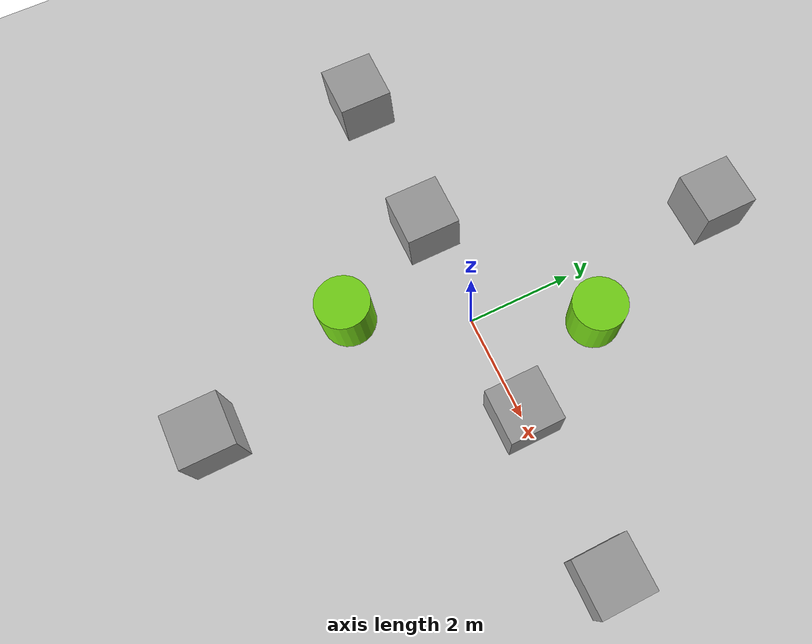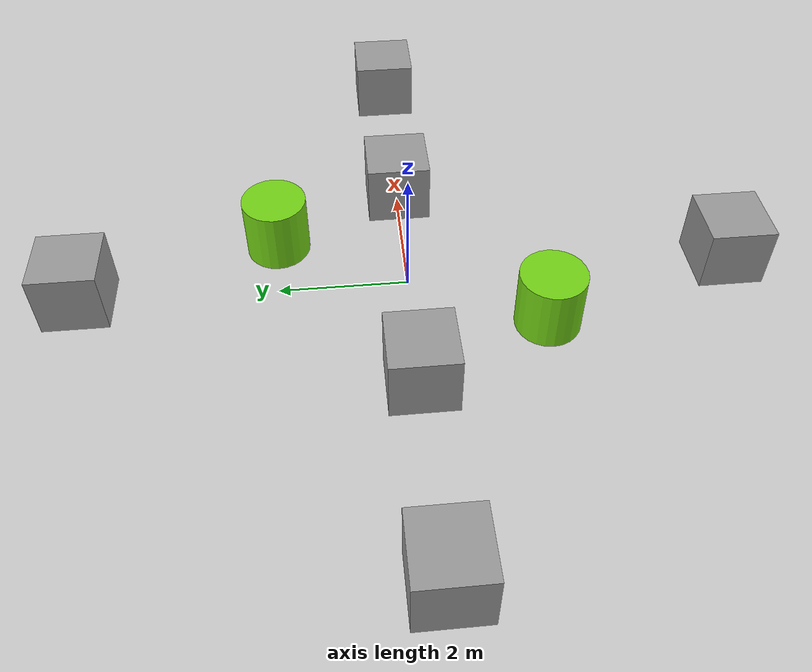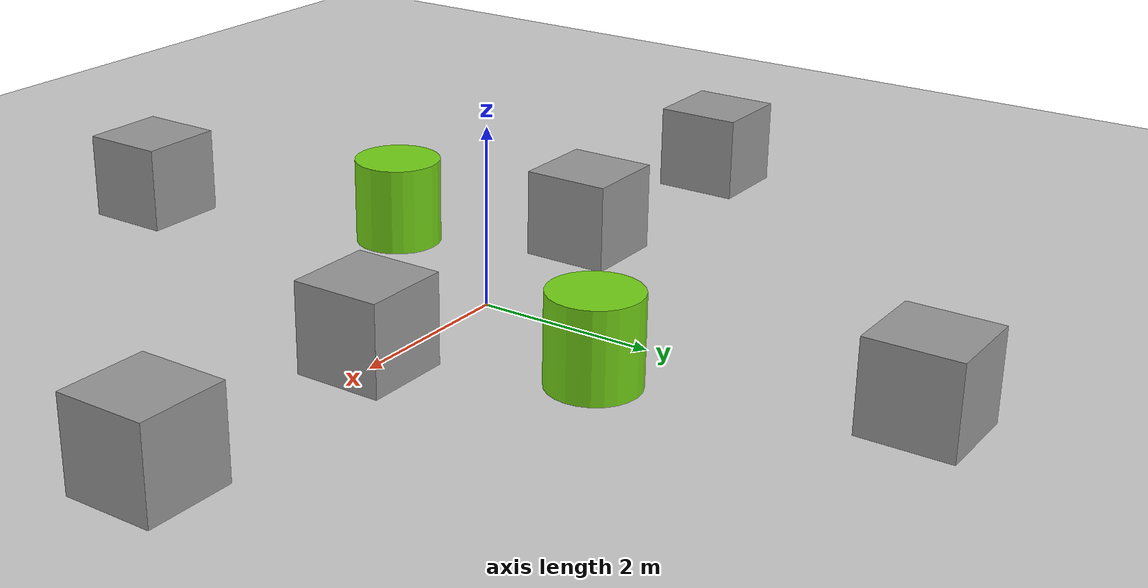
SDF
<?xml version="1.0" ?>
<sdf version="1.6">
  <world name="maze_world">

    <!-- Lighting -->
    <include>
      <uri>model://sun</uri>
    </include>

    <!-- Ground plane -->
    <include>
      <uri>model://ground_plane</uri>
    </include>

    <!-- Square boundary walls (5x5) -->
    <include>
      <uri>model://unit_box</uri>
      <pose>5 0 0.5 0 0 0</pose> <!-- east wall -->
      <scale>0.1 10 1</scale>
    </include>

    <include>
      <uri>model://unit_box</uri>
      <pose>-5 0 0.5 0 0 0</pose> <!-- west wall -->
      <scale>0.1 10 1</scale>
    </include>

    <include>
      <uri>model://unit_box</uri>
      <pose>0 5 0.5 0 0 0</pose> <!-- north wall -->
      <scale>10 0.1 1</scale>
    </include>

    <include>
      <uri>model://unit_box</uri>
      <pose>0 -5 0.5 0 0 0</pose> <!-- south wall -->
      <scale>10 0.1 1</scale>
    </include>

    <!-- Inner obstacles -->
    <include>
      <uri>model://unit_box</uri>
      <pose>2 0 0.5 0 0 0</pose>
    </include>

    <include>
      <uri>model://unit_box</uri>
      <pose>-2 0 0.5 0 0 0</pose>
    </include>

    <include>
      <uri>model://unit_cylinder</uri>
      <pose>1 2 0.5 0 0 0</pose>
    </include>

    <include>
      <uri>model://unit_cylinder</uri>
      <pose>-1 -2 0.5 0 0 0</pose>
    </include>

    <!-- Physics -->
    <physics name="default_physics" type="ode">
      <gravity>0 0 -9.81</gravity>
      <max_step_size>0.001</max_step_size>
      <real_time_update_rate>1000</real_time_update_rate>
    </physics>

  </world>
</sdf>

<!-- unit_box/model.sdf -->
<sdf version='1.7'>
  <model name='unit_box'>
    <link name='link'>
      <inertial>
        <mass>1</mass>
        <inertia>
          <ixx>0.166667</ixx>
          <ixy>0</ixy>
          <ixz>0</ixz>
          <iyy>0.166667</iyy>
          <iyz>0</iyz>
          <izz>0.166667</izz>
        </inertia>
        <pose>0 0 0 0 -0 0</pose>
      </inertial>
      <self_collide>0</self_collide>
      <enable_wind>0</enable_wind>
      <pose>0 0 0 0 -0 0</pose>
      <gravity>1</gravity>
      <kinematic>0</kinematic>
      <visual name='visual'>
        <geometry>
          <box>
            <size>1 1 1</size>
          </box>
        </geometry>
        <material>
          <script>
            <name>Gazebo/Grey</name>
            <uri>file://media/materials/scripts/gazebo.material</uri>
          </script>
          <shader type='pixel'>
            <normal_map>__default__</normal_map>
          </shader>
          <ambient>0.8 0.8 0.8 1</ambient>
          <diffuse>0.7 0.7 0.7 1</diffuse>
          <specular>0.01 0.01 0.01 1</specular>
          <emissive>0 0 0 1</emissive>
        </material>
        <pose>0 0 0 0 -0 0</pose>
        <transparency>0</transparency>
        <cast_shadows>1</cast_shadows>
      </visual>
      <collision name='collision'>
        <laser_retro>0</laser_retro>
        <max_contacts>10</max_contacts>
        <pose>0 0 0 0 -0 0</pose>
        <geometry>
          <box>
            <size>1 1 1</size>
          </box>
        </geometry>
        <surface>
          <friction>
            <ode>
              <mu>1</mu>
              <mu2>1</mu2>
              <fdir1>0 0 0</fdir1>
              <slip1>0</slip1>
              <slip2>0</slip2>
            </ode>
            <torsional>
              <coefficient>1</coefficient>
              <patch_radius>0</patch_radius>
              <surface_radius>0</surface_radius>
              <use_patch_radius>1</use_patch_radius>
              <ode>
                <slip>0</slip>
              </ode>
            </torsional>
          </friction>
          <bounce>
            <restitution_coefficient>0</restitution_coefficient>
            <threshold>1e+06</threshold>
          </bounce>
          <contact>
            <collide_without_contact>0</collide_without_contact>
            <collide_without_contact_bitmask>1</collide_without_contact_bitmask>
            <collide_bitmask>1</collide_bitmask>
            <ode>
              <soft_cfm>0</soft_cfm>
              <soft_erp>0.2</soft_erp>
              <kp>1e+13</kp>
              <kd>1</kd>
              <max_vel>0.01</max_vel>
              <min_depth>0</min_depth>
            </ode>
            <bullet>
              <split_impulse>1</split_impulse>
              <split_impulse_penetration_threshold>-0.01</split_impulse_penetration_threshold>
              <soft_cfm>0</soft_cfm>
              <soft_erp>0.2</soft_erp>
              <kp>1e+13</kp>
              <kd>1</kd>
            </bullet>
          </contact>
        </surface>
      </collision>
    </link>
    <static>0</static>
    <allow_auto_disable>1</allow_auto_disable>
  </model>
</sdf>

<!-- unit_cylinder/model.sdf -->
<sdf version='1.7'>
  <model name='unit_cylinder'>
    <link name='link'>
      <inertial>
        <mass>1</mass>
        <inertia>
          <ixx>0.145833</ixx>
          <ixy>0</ixy>
          <ixz>0</ixz>
          <iyy>0.145833</iyy>
          <iyz>0</iyz>
          <izz>0.125</izz>
        </inertia>
        <pose>0 0 0 0 -0 0</pose>
      </inertial>
      <self_collide>0</self_collide>
      <enable_wind>0</enable_wind>
      <kinematic>0</kinematic>
      <pose>0 0 0 0 -0 0</pose>
      <gravity>1</gravity>
      <visual name='visual'>
        <geometry>
          <cylinder>
            <radius>0.5</radius>
            <length>1</length>
          </cylinder>
        </geometry>
        <material>
          <script>
            <name>Gazebo/Grey</name>
            <uri>file://media/materials/scripts/gazebo.material</uri>
          </script>
          <shader type='pixel'>
            <normal_map>__default__</normal_map>
          </shader>
          <ambient>0.769 0.627 0 1</ambient>
          <diffuse>0.451 0.824 0.086 1</diffuse>
          <specular>0.451 0.824 0.086 1</specular>
          <emissive>0.451 0.824 0.086 1</emissive>
        </material>
        <pose>0 0 0 0 -0 0</pose>
        <transparency>0</transparency>
        <cast_shadows>1</cast_shadows>
      </visual>
      <collision name='collision'>
        <laser_retro>0</laser_retro>
        <max_contacts>10</max_contacts>
        <pose>0 0 0 0 -0 0</pose>
        <geometry>
          <cylinder>
            <radius>0.5</radius>
            <length>1</length>
          </cylinder>
        </geometry>
        <surface>
          <friction>
            <ode>
              <mu>1</mu>
              <mu2>1</mu2>
              <fdir1>0 0 0</fdir1>
              <slip1>0</slip1>
              <slip2>0</slip2>
            </ode>
            <torsional>
              <coefficient>1</coefficient>
              <patch_radius>0</patch_radius>
              <surface_radius>0</surface_radius>
              <use_patch_radius>1</use_patch_radius>
              <ode>
                <slip>0</slip>
              </ode>
            </torsional>
          </friction>
          <bounce>
            <restitution_coefficient>0</restitution_coefficient>
            <threshold>1e+06</threshold>
          </bounce>
          <contact>
            <collide_without_contact>0</collide_without_contact>
            <collide_without_contact_bitmask>1</collide_without_contact_bitmask>
            <collide_bitmask>1</collide_bitmask>
            <ode>
              <soft_cfm>0</soft_cfm>
              <soft_erp>0.2</soft_erp>
              <kp>1e+13</kp>
              <kd>1</kd>
              <max_vel>0.01</max_vel>
              <min_depth>0</min_depth>
            </ode>
            <bullet>
              <split_impulse>1</split_impulse>
              <split_impulse_penetration_threshold>-0.01</split_impulse_penetration_threshold>
              <soft_cfm>0</soft_cfm>
              <soft_erp>0.2</soft_erp>
              <kp>1e+13</kp>
              <kd>1</kd>
            </bullet>
          </contact>
        </surface>
      </collision>
    </link>
    <static>0</static>
    <allow_auto_disable>1</allow_auto_disable>
  </model>
</sdf>
